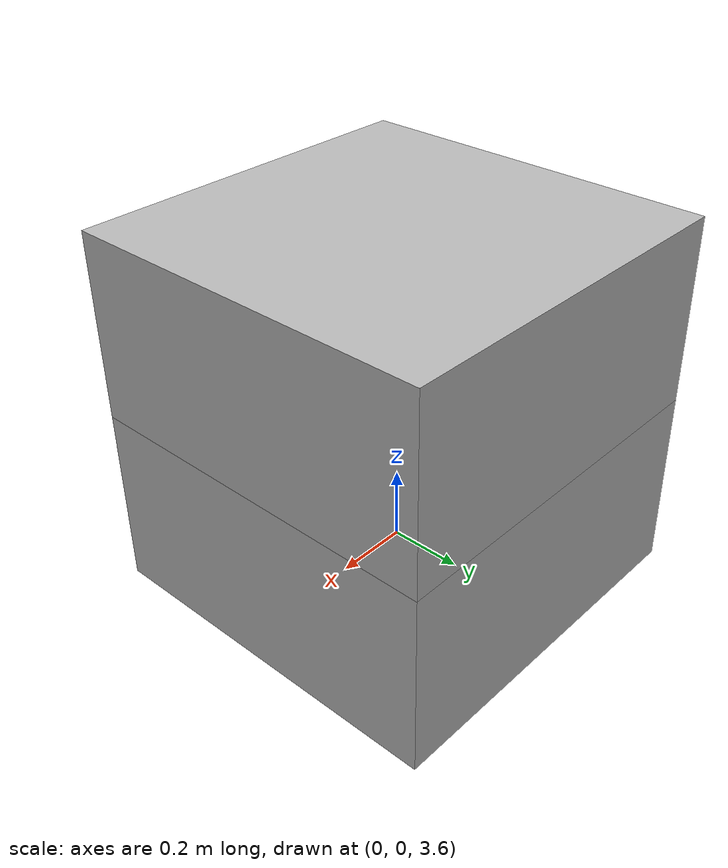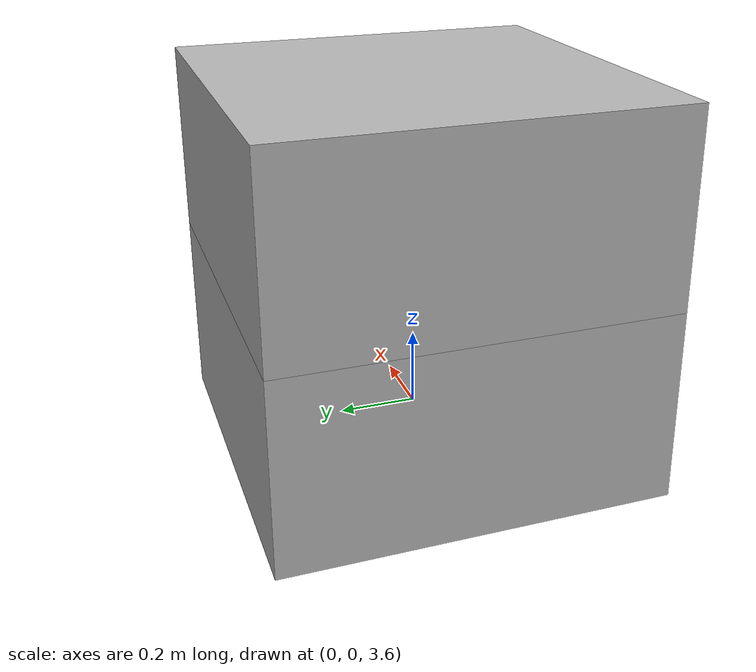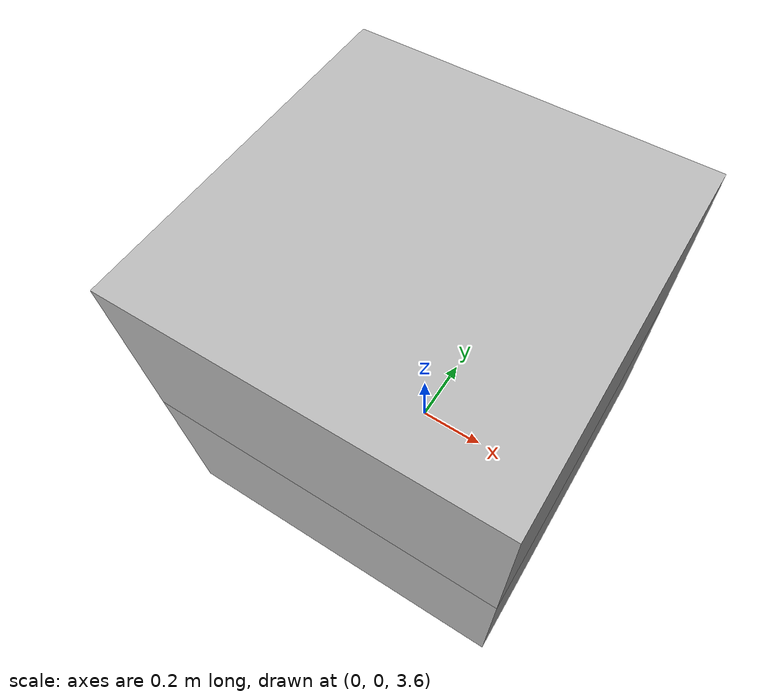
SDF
<?xml version="1.0" ?>
<sdf version="1.6">
  <world name="default">

            <plugin
      filename="gz-sim-physics-system"
      name="gz::sim::systems::Physics">
        <engine><filename>gz-physics-bullet-featherstone-plugin</filename></engine>
    </plugin>
    <plugin
      filename="gz-sim-scene-broadcaster-system"
      name="gz::sim::systems::SceneBroadcaster">
    </plugin>

    <model name="ground_plane">
      <static>true</static>
      <link name="link">
        <collision name="collision">
          <geometry>
            <plane>
              <normal>0 0 1</normal>
              <size>100 100</size>
            </plane>
          </geometry>
        </collision>
        <visual name="visual">
          <geometry>
            <plane>
              <normal>0 0 1</normal>
              <size>100 100</size>
            </plane>
          </geometry>
          <material>
            <ambient>0.8 0.8 0.8 1</ambient>
            <diffuse>0.8 0.8 0.8 1</diffuse>
            <emissive>0.8 0.8 0.8 1</emissive>
          </material>
        </visual>
      </link>
    </model>

    <model name="box">
      <static>false</static>
      <pose>0 0 4.0 0 0 0</pose>
      <link name="box_link">
        <inertial>
          <inertia>
            <ixx>1</ixx>
            <ixy>0</ixy>
            <ixz>0</ixz>
            <iyy>1</iyy>
            <iyz>0</iyz>
            <izz>1</izz>
          </inertia>
          <mass>1.0</mass>
        </inertial>
        <collision name="box_collision_upper">
          <pose>0 0 0.25 0 0 0</pose>
          <geometry>
            <box>
              <size>1 1 0.5</size>
            </box>
          </geometry>
        </collision>
        <visual name="box_visual_upper">
          <pose>0 0 0.25 0 0 0</pose>
          <geometry>
            <box>
              <size>1 1 0.5</size>
            </box>
          </geometry>
        </visual>

        <collision name="box_collision_lower">
          <pose>0 0 -0.25 0 0 0</pose>
          <geometry>
            <box>
              <size>1 1 0.5</size>
            </box>
          </geometry>
        </collision>
        <visual name="box_visual_lower">
          <pose>0 0 -0.25 0 0 0</pose>
          <geometry>
            <box>
              <size>1 1 0.5</size>
            </box>
          </geometry>
        </visual>
      </link>
    </model>
  </world>
</sdf>
